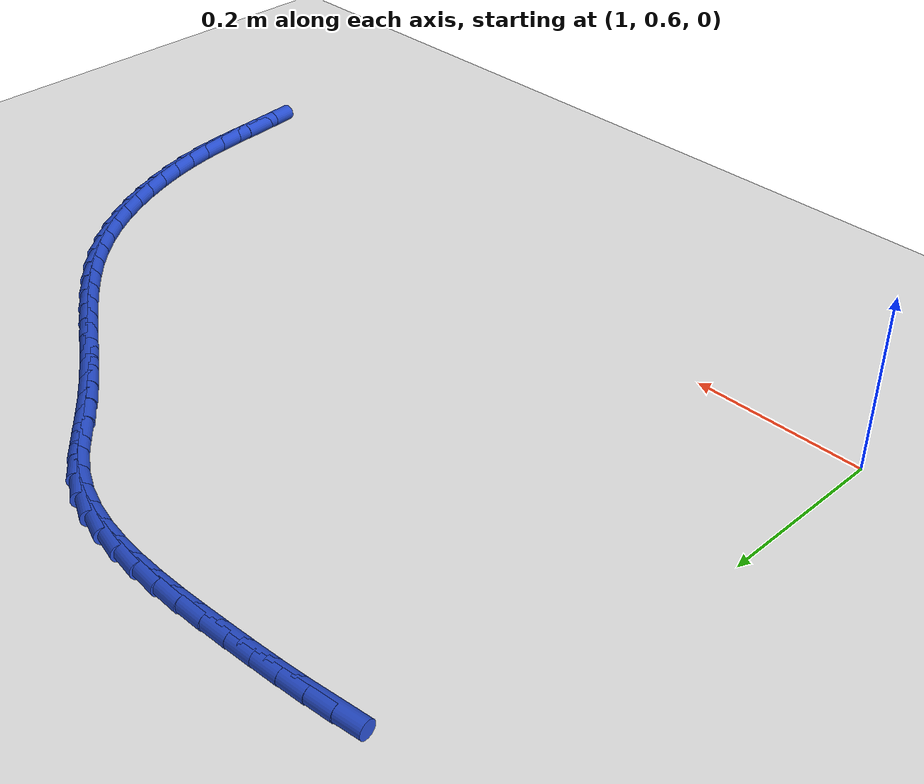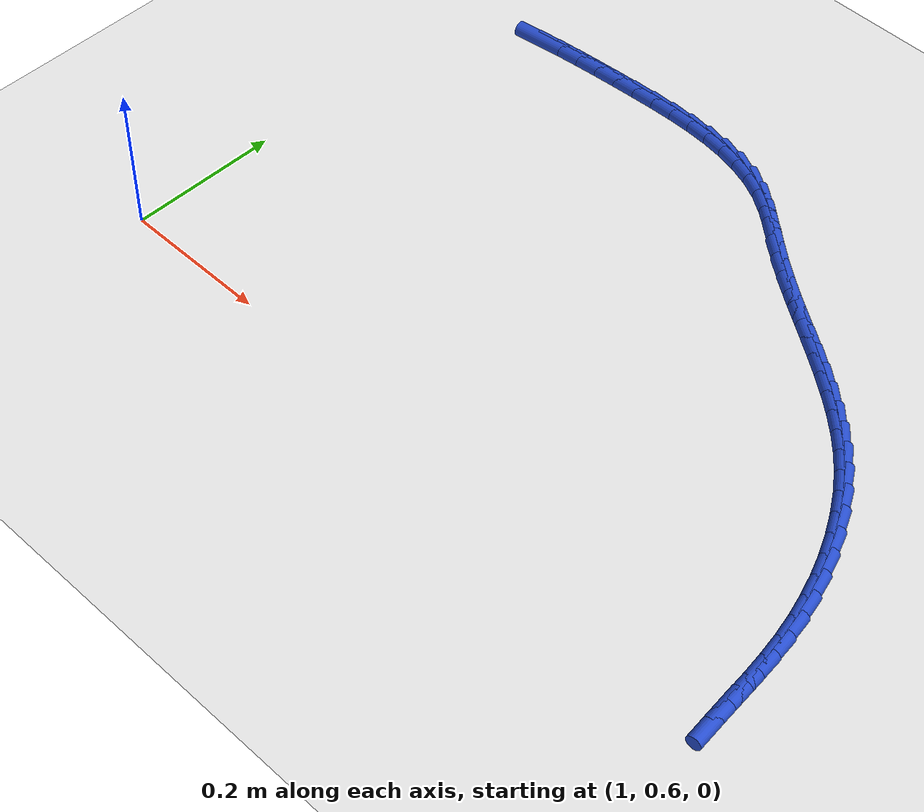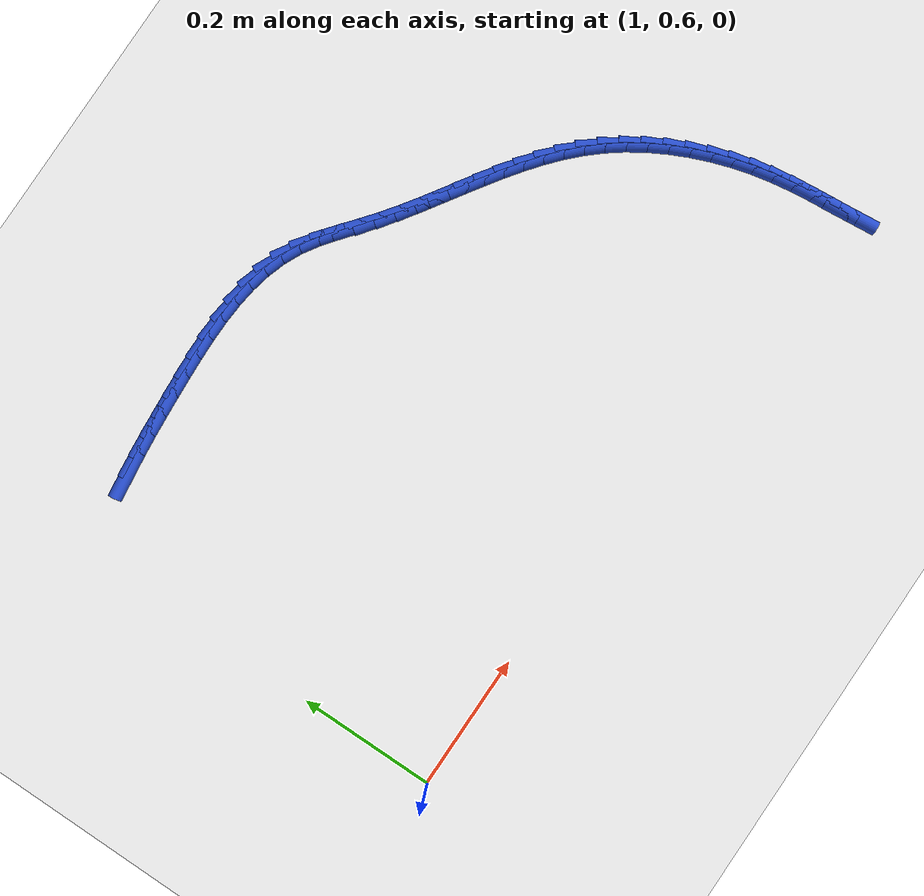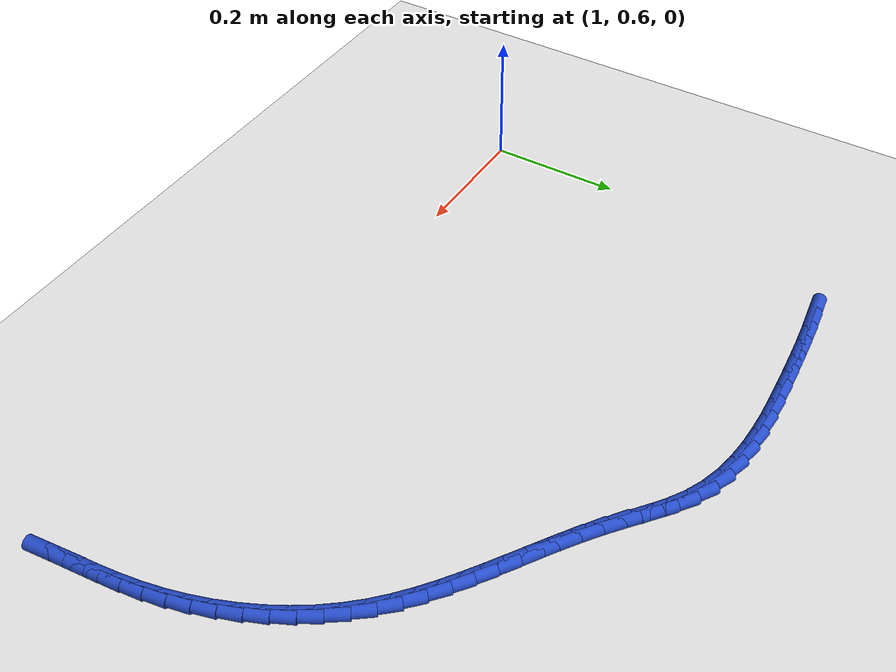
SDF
<sdf version="1.6">
 <world name="default">
  <model name="ground_plane">
   <static>1</static>
   <link name="link">
    <collision name="collision">
     <geometry><plane><normal>0 0 1</normal><size>100 100</size></plane></geometry>
     <surface><friction><ode><mu>100</mu><mu2>50</mu2></ode></friction></surface>
    </collision>
    <visual name="visual">
     <cast_shadows>0</cast_shadows>
     <geometry><plane><normal>0 0 1</normal><size>100 100</size></plane></geometry>
     <material>
      <script><uri>file://media/materials/scripts/gazebo.material</uri><name>Gazebo/WhiteGlow</name></script>
     </material>
    </visual>
   </link>
  </model>
  <model name="line">
   <link name="link_59">
    <pose>1.1221974374540755 1.1787878383687243 0.01 0 1.57 0.12699382622252442</pose>
    <collision name="collision">
     <geometry><cylinder><radius>0.01</radius><length>0.08</length></cylinder></geometry>
    </collision>
    <visual name="visual">
     <material>
      <script><name>Gazebo/Blue</name><uri>file://media/materials/scripts/gazebo.material</uri></script>
     </material>
     <geometry><cylinder><radius>0.01</radius><length>0.08</length></cylinder></geometry>
    </visual>
   </link>
   <link name="link_60">
    <pose>1.1520493601372221 1.1825993603346534 0.01 0 1.57 0.10156933419751353</pose>
    <collision name="collision">
     <geometry><cylinder><radius>0.01</radius><length>0.08</length></cylinder></geometry>
    </collision>
    <visual name="visual">
     <material>
      <script><name>Gazebo/Blue</name><uri>file://media/materials/scripts/gazebo.material</uri></script>
     </material>
     <geometry><cylinder><radius>0.01</radius><length>0.08</length></cylinder></geometry>
    </visual>
   </link>
   <link name="link_61">
    <pose>1.182346296739578 1.1856872258030386 0.01 0 1.57 0.08274207911694119</pose>
    <collision name="collision">
     <geometry><cylinder><radius>0.01</radius><length>0.08</length></cylinder></geometry>
    </collision>
    <visual name="visual">
     <material>
      <script><name>Gazebo/Blue</name><uri>file://media/materials/scripts/gazebo.material</uri></script>
     </material>
     <geometry><cylinder><radius>0.01</radius><length>0.08</length></cylinder></geometry>
    </visual>
   </link>
   <link name="link_62">
    <pose>1.2130212666921885 1.1882311446814733 0.01 0 1.57 0.07022836141062268</pose>
    <collision name="collision">
     <geometry><cylinder><radius>0.01</radius><length>0.08</length></cylinder></geometry>
    </collision>
    <visual name="visual">
     <material>
      <script><name>Gazebo/Blue</name><uri>file://media/materials/scripts/gazebo.material</uri></script>
     </material>
     <geometry><cylinder><radius>0.01</radius><length>0.08</length></cylinder></geometry>
    </visual>
   </link>
   <link name="link_63">
    <pose>1.2440072894260994 1.1904108268775508 0.01 0 1.57 0.06299139876935778</pose>
    <collision name="collision">
     <geometry><cylinder><radius>0.01</radius><length>0.08</length></cylinder></geometry>
    </collision>
    <visual name="visual">
     <material>
      <script><name>Gazebo/Blue</name><uri>file://media/materials/scripts/gazebo.material</uri></script>
     </material>
     <geometry><cylinder><radius>0.01</radius><length>0.08</length></cylinder></geometry>
    </visual>
   </link>
   <link name="link_64">
    <pose>1.275231124897852 1.1923802654940532 0.01 0 1.57 0.05062744018367149</pose>
    <collision name="collision">
     <geometry><cylinder><radius>0.01</radius><length>0.08</length></cylinder></geometry>
    </collision>
    <visual name="visual">
     <material>
      <script><name>Gazebo/Blue</name><uri>file://media/materials/scripts/gazebo.material</uri></script>
     </material>
     <geometry><cylinder><radius>0.01</radius><length>0.08</length></cylinder></geometry>
    </visual>
   </link>
   <link name="link_65">
    <pose>1.3065400034953691 1.1939667095289708 0.01 0 1.57 0.025835764297099696</pose>
    <collision name="collision">
     <geometry><cylinder><radius>0.01</radius><length>0.08</length></cylinder></geometry>
    </collision>
    <visual name="visual">
     <material>
      <script><name>Gazebo/Blue</name><uri>file://media/materials/scripts/gazebo.material</uri></script>
     </material>
     <geometry><cylinder><radius>0.01</radius><length>0.08</length></cylinder></geometry>
    </visual>
   </link>
   <link name="link_66">
    <pose>1.337726440785607 1.1947726142902884 0.01 0 1.57 -0.012204947464806616</pose>
    <collision name="collision">
     <geometry><cylinder><radius>0.01</radius><length>0.08</length></cylinder></geometry>
    </collision>
    <visual name="visual">
     <material>
      <script><name>Gazebo/Blue</name><uri>file://media/materials/scripts/gazebo.material</uri></script>
     </material>
     <geometry><cylinder><radius>0.01</radius><length>0.08</length></cylinder></geometry>
    </visual>
   </link>
   <link name="link_67">
    <pose>1.3685818744518432 1.1943960066432842 0.01 0 1.57 -0.06459866417769501</pose>
    <collision name="collision">
     <geometry><cylinder><radius>0.01</radius><length>0.08</length></cylinder></geometry>
    </collision>
    <visual name="visual">
     <material>
      <script><name>Gazebo/Blue</name><uri>file://media/materials/scripts/gazebo.material</uri></script>
     </material>
     <geometry><cylinder><radius>0.01</radius><length>0.08</length></cylinder></geometry>
    </visual>
   </link>
   <link name="link_68">
    <pose>1.3988977421773545 1.1924349134532353 0.01 0 1.57 -0.132723878665268</pose>
    <collision name="collision">
     <geometry><cylinder><radius>0.01</radius><length>0.08</length></cylinder></geometry>
    </collision>
    <visual name="visual">
     <material>
      <script><name>Gazebo/Blue</name><uri>file://media/materials/scripts/gazebo.material</uri></script>
     </material>
     <geometry><cylinder><radius>0.01</radius><length>0.08</length></cylinder></geometry>
    </visual>
   </link>
   <link name="link_69">
    <pose>1.428465481645419 1.18848736158542 0.01 0 1.57 -0.21793517233601017</pose>
    <collision name="collision">
     <geometry><cylinder><radius>0.01</radius><length>0.08</length></cylinder></geometry>
    </collision>
    <visual name="visual">
     <material>
      <script><name>Gazebo/Blue</name><uri>file://media/materials/scripts/gazebo.material</uri></script>
     </material>
     <geometry><cylinder><radius>0.01</radius><length>0.08</length></cylinder></geometry>
    </visual>
   </link>
   <link name="link_70">
    <pose>1.4570765305393123 1.1821513779051147 0.01 0 1.57 -0.32102206809185646</pose>
    <collision name="collision">
     <geometry><cylinder><radius>0.01</radius><length>0.08</length></cylinder></geometry>
    </collision>
    <visual name="visual">
     <material>
      <script><name>Gazebo/Blue</name><uri>file://media/materials/scripts/gazebo.material</uri></script>
     </material>
     <geometry><cylinder><radius>0.01</radius><length>0.08</length></cylinder></geometry>
    </visual>
   </link>
   <link name="link_71">
    <pose>1.4845223265423124 1.1730249892775981 0.01 0 1.57 -0.44139892792805374</pose>
    <collision name="collision">
     <geometry><cylinder><radius>0.01</radius><length>0.08</length></cylinder></geometry>
    </collision>
    <visual name="visual">
     <material>
      <script><name>Gazebo/Blue</name><uri>file://media/materials/scripts/gazebo.material</uri></script>
     </material>
     <geometry><cylinder><radius>0.01</radius><length>0.08</length></cylinder></geometry>
    </visual>
   </link>
   <link name="link_72">
    <pose>1.5105943073376953 1.160706222568147 0.01 0 1.57 -0.5657553439380983</pose>
    <collision name="collision">
     <geometry><cylinder><radius>0.01</radius><length>0.08</length></cylinder></geometry>
    </collision>
    <visual name="visual">
     <material>
      <script><name>Gazebo/Blue</name><uri>file://media/materials/scripts/gazebo.material</uri></script>
     </material>
     <geometry><cylinder><radius>0.01</radius><length>0.08</length></cylinder></geometry>
    </visual>
   </link>
   <link name="link_73">
    <pose>1.5352231057080645 1.145067028423507 0.01 0 1.57 -0.649163051151366</pose>
    <collision name="collision">
     <geometry><cylinder><radius>0.01</radius><length>0.08</length></cylinder></geometry>
    </collision>
    <visual name="visual">
     <material>
      <script><name>Gazebo/Blue</name><uri>file://media/materials/scripts/gazebo.material</uri></script>
     </material>
     <geometry><cylinder><radius>0.01</radius><length>0.08</length></cylinder></geometry>
    </visual>
   </link>
   <link name="link_74">
    <pose>1.558905991958142 1.127094450575827 0.01 0 1.57 -0.6833527396289902</pose>
    <collision name="collision">
     <geometry><cylinder><radius>0.01</radius><length>0.08</length></cylinder></geometry>
    </collision>
    <visual name="visual">
     <material>
      <script><name>Gazebo/Blue</name><uri>file://media/materials/scripts/gazebo.material</uri></script>
     </material>
     <geometry><cylinder><radius>0.01</radius><length>0.08</length></cylinder></geometry>
    </visual>
   </link>
   <link name="link_75">
    <pose>1.58228440352493 1.1080592410647276 0.01 0 1.57 -0.6712929177075629</pose>
    <collision name="collision">
     <geometry><cylinder><radius>0.01</radius><length>0.08</length></cylinder></geometry>
    </collision>
    <visual name="visual">
     <material>
      <script><name>Gazebo/Blue</name><uri>file://media/materials/scripts/gazebo.material</uri></script>
     </material>
     <geometry><cylinder><radius>0.01</radius><length>0.08</length></cylinder></geometry>
    </visual>
   </link>
   <link name="link_76">
    <pose>1.605995318118645 1.089224220624254 0.01 0 1.57 -0.633973117105814</pose>
    <collision name="collision">
     <geometry><cylinder><radius>0.01</radius><length>0.08</length></cylinder></geometry>
    </collision>
    <visual name="visual">
     <material>
      <script><name>Gazebo/Blue</name><uri>file://media/materials/scripts/gazebo.material</uri></script>
     </material>
     <geometry><cylinder><radius>0.01</radius><length>0.08</length></cylinder></geometry>
    </visual>
   </link>
   <link name="link_77">
    <pose>1.6303680120488673 1.071304984652881 0.01 0 1.57 -0.6046618642572128</pose>
    <collision name="collision">
     <geometry><cylinder><radius>0.01</radius><length>0.08</length></cylinder></geometry>
    </collision>
    <visual name="visual">
     <material>
      <script><name>Gazebo/Blue</name><uri>file://media/materials/scripts/gazebo.material</uri></script>
     </material>
     <geometry><cylinder><radius>0.01</radius><length>0.08</length></cylinder></geometry>
    </visual>
   </link>
   <link name="link_78">
    <pose>1.6552302050139303 1.0541251453331166 0.01 0 1.57 -0.5864422495113113</pose>
    <collision name="collision">
     <geometry><cylinder><radius>0.01</radius><length>0.08</length></cylinder></geometry>
    </collision>
    <visual name="visual">
     <material>
      <script><name>Gazebo/Blue</name><uri>file://media/materials/scripts/gazebo.material</uri></script>
     </material>
     <geometry><cylinder><radius>0.01</radius><length>0.08</length></cylinder></geometry>
    </visual>
   </link>
   <link name="link_79">
    <pose>1.6803634605193594 1.0374262292994503 0.01 0 1.57 -0.5793182789395411</pose>
    <collision name="collision">
     <geometry><cylinder><radius>0.01</radius><length>0.08</length></cylinder></geometry>
    </collision>
    <visual name="visual">
     <material>
      <script><name>Gazebo/Blue</name><uri>file://media/materials/scripts/gazebo.material</uri></script>
     </material>
     <geometry><cylinder><radius>0.01</radius><length>0.08</length></cylinder></geometry>
    </visual>
   </link>
   <link name="link_80">
    <pose>1.7055493420706824 1.0209497631863726 0.01 0 1.57 -0.5833519210986355</pose>
    <collision name="collision">
     <geometry><cylinder><radius>0.01</radius><length>0.08</length></cylinder></geometry>
    </collision>
    <visual name="visual">
     <material>
      <script><name>Gazebo/Blue</name><uri>file://media/materials/scripts/gazebo.material</uri></script>
     </material>
     <geometry><cylinder><radius>0.01</radius><length>0.08</length></cylinder></geometry>
    </visual>
   </link>
   <link name="link_81">
    <pose>1.7305694131734253 1.0044372736283724 0.01 0 1.57 -0.5986913272170409</pose>
    <collision name="collision">
     <geometry><cylinder><radius>0.01</radius><length>0.08</length></cylinder></geometry>
    </collision>
    <visual name="visual">
     <material>
      <script><name>Gazebo/Blue</name><uri>file://media/materials/scripts/gazebo.material</uri></script>
     </material>
     <geometry><cylinder><radius>0.01</radius><length>0.08</length></cylinder></geometry>
    </visual>
   </link>
   <link name="link_82">
    <pose>1.7552052373331144 0.9876302872599396 0.01 0 1.57 -0.6255585480275918</pose>
    <collision name="collision">
     <geometry><cylinder><radius>0.01</radius><length>0.08</length></cylinder></geometry>
    </collision>
    <visual name="visual">
     <material>
      <script><name>Gazebo/Blue</name><uri>file://media/materials/scripts/gazebo.material</uri></script>
     </material>
     <geometry><cylinder><radius>0.01</radius><length>0.08</length></cylinder></geometry>
    </visual>
   </link>
   <link name="link_83">
    <pose>1.7792383780552772 0.9702703307155647 0.01 0 1.57 -0.6641923107368658</pose>
    <collision name="collision">
     <geometry><cylinder><radius>0.01</radius><length>0.08</length></cylinder></geometry>
    </collision>
    <visual name="visual">
     <material>
      <script><name>Gazebo/Blue</name><uri>file://media/materials/scripts/gazebo.material</uri></script>
     </material>
     <geometry><cylinder><radius>0.01</radius><length>0.08</length></cylinder></geometry>
    </visual>
   </link>
   <link name="link_84">
    <pose>1.802450398845439 0.9520989306297366 0.01 0 1.57 -0.7147388923626082</pose>
    <collision name="collision">
     <geometry><cylinder><radius>0.01</radius><length>0.08</length></cylinder></geometry>
    </collision>
    <visual name="visual">
     <material>
      <script><name>Gazebo/Blue</name><uri>file://media/materials/scripts/gazebo.material</uri></script>
     </material>
     <geometry><cylinder><radius>0.01</radius><length>0.08</length></cylinder></geometry>
    </visual>
   </link>
   <link name="link_85">
    <pose>1.8246228632091277 0.9328576136369453 0.01 0 1.57 -0.777087615831865</pose>
    <collision name="collision">
     <geometry><cylinder><radius>0.01</radius><length>0.08</length></cylinder></geometry>
    </collision>
    <visual name="visual">
     <material>
      <script><name>Gazebo/Blue</name><uri>file://media/materials/scripts/gazebo.material</uri></script>
     </material>
     <geometry><cylinder><radius>0.01</radius><length>0.08</length></cylinder></geometry>
    </visual>
   </link>
   <link name="link_86">
    <pose>1.8455373346518695 0.9122879063716811 0.01 0 1.57 -0.8500505865526808</pose>
    <collision name="collision">
     <geometry><cylinder><radius>0.01</radius><length>0.08</length></cylinder></geometry>
    </collision>
    <visual name="visual">
     <material>
      <script><name>Gazebo/Blue</name><uri>file://media/materials/scripts/gazebo.material</uri></script>
     </material>
     <geometry><cylinder><radius>0.01</radius><length>0.08</length></cylinder></geometry>
    </visual>
   </link>
   <link name="link_87">
    <pose>1.8649835134855937 0.8901494263133186 0.01 0 1.57 -0.9246068376021098</pose>
    <collision name="collision">
     <geometry><cylinder><radius>0.01</radius><length>0.08</length></cylinder></geometry>
    </collision>
    <visual name="visual">
     <material>
      <script><name>Gazebo/Blue</name><uri>file://media/materials/scripts/gazebo.material</uri></script>
     </material>
     <geometry><cylinder><radius>0.01</radius><length>0.08</length></cylinder></geometry>
    </visual>
   </link>
   <link name="link_88">
    <pose>1.8828609069785371 0.8664459285691141 0.01 0 1.57 -0.9950174953947333</pose>
    <collision name="collision">
     <geometry><cylinder><radius>0.01</radius><length>0.08</length></cylinder></geometry>
    </collision>
    <visual name="visual">
     <material>
      <script><name>Gazebo/Blue</name><uri>file://media/materials/scripts/gazebo.material</uri></script>
     </material>
     <geometry><cylinder><radius>0.01</radius><length>0.08</length></cylinder></geometry>
    </visual>
   </link>
   <link name="link_89">
    <pose>1.899147831712147 0.841356387735412 0.01 0 1.57 -1.061683226617974</pose>
    <collision name="collision">
     <geometry><cylinder><radius>0.01</radius><length>0.08</length></cylinder></geometry>
    </collision>
    <visual name="visual">
     <material>
      <script><name>Gazebo/Blue</name><uri>file://media/materials/scripts/gazebo.material</uri></script>
     </material>
     <geometry><cylinder><radius>0.01</radius><length>0.08</length></cylinder></geometry>
    </visual>
   </link>
   <link name="link_90">
    <pose>1.9138243269385748 0.8150636084822941 0.01 0 1.57 -1.1251895767879638</pose>
    <collision name="collision">
     <geometry><cylinder><radius>0.01</radius><length>0.08</length></cylinder></geometry>
    </collision>
    <visual name="visual">
     <material>
      <script><name>Gazebo/Blue</name><uri>file://media/materials/scripts/gazebo.material</uri></script>
     </material>
     <geometry><cylinder><radius>0.01</radius><length>0.08</length></cylinder></geometry>
    </visual>
   </link>
   <link name="link_91">
    <pose>1.9268704319099739 0.7877503954798423 0.01 0 1.57 -1.1861499341707493</pose>
    <collision name="collision">
     <geometry><cylinder><radius>0.01</radius><length>0.08</length></cylinder></geometry>
    </collision>
    <visual name="visual">
     <material>
      <script><name>Gazebo/Blue</name><uri>file://media/materials/scripts/gazebo.material</uri></script>
     </material>
     <geometry><cylinder><radius>0.01</radius><length>0.08</length></cylinder></geometry>
    </visual>
   </link>
   <link name="link_92">
    <pose>1.9382661858784949 0.7595995533981376 0.01 0 1.57 -1.245190468543144</pose>
    <collision name="collision">
     <geometry><cylinder><radius>0.01</radius><length>0.08</length></cylinder></geometry>
    </collision>
    <visual name="visual">
     <material>
      <script><name>Gazebo/Blue</name><uri>file://media/materials/scripts/gazebo.material</uri></script>
     </material>
     <geometry><cylinder><radius>0.01</radius><length>0.08</length></cylinder></geometry>
    </visual>
   </link>
   <link name="link_93">
    <pose>1.9479916280962903 0.7307938869072612 0.01 0 1.57 -1.3029444172997642</pose>
    <collision name="collision">
     <geometry><cylinder><radius>0.01</radius><length>0.08</length></cylinder></geometry>
    </collision>
    <visual name="visual">
     <material>
      <script><name>Gazebo/Blue</name><uri>file://media/materials/scripts/gazebo.material</uri></script>
     </material>
     <geometry><cylinder><radius>0.01</radius><length>0.08</length></cylinder></geometry>
    </visual>
   </link>
   <link name="link_94">
    <pose>1.9560267978155121 0.7015162006772956 0.01 0 1.57 -1.3600526529412829</pose>
    <collision name="collision">
     <geometry><cylinder><radius>0.01</radius><length>0.08</length></cylinder></geometry>
    </collision>
    <visual name="visual">
     <material>
      <script><name>Gazebo/Blue</name><uri>file://media/materials/scripts/gazebo.material</uri></script>
     </material>
     <geometry><cylinder><radius>0.01</radius><length>0.08</length></cylinder></geometry>
    </visual>
   </link>
   <link name="link_95">
    <pose>1.9623517509806503 0.6719492953800116 0.01 0 1.57 -1.4138890516357348</pose>
    <collision name="collision">
     <geometry><cylinder><radius>0.01</radius><length>0.08</length></cylinder></geometry>
    </collision>
    <visual name="visual">
     <material>
      <script><name>Gazebo/Blue</name><uri>file://media/materials/scripts/gazebo.material</uri></script>
     </material>
     <geometry><cylinder><radius>0.01</radius><length>0.08</length></cylinder></geometry>
    </visual>
   </link>
   <link name="link_96">
    <pose>1.9670502304325217 0.6422511355981756 0.01 0 1.57 -1.4535426384321801</pose>
    <collision name="collision">
     <geometry><cylinder><radius>0.01</radius><length>0.08</length></cylinder></geometry>
    </collision>
    <visual name="visual">
     <material>
      <script><name>Gazebo/Blue</name><uri>file://media/materials/scripts/gazebo.material</uri></script>
     </material>
     <geometry><cylinder><radius>0.01</radius><length>0.08</length></cylinder></geometry>
    </visual>
   </link>
   <link name="link_97">
    <pose>1.9705552029199556 0.612496036423937 0.01 0 1.57 -1.4763762709311823</pose>
    <collision name="collision">
     <geometry><cylinder><radius>0.01</radius><length>0.08</length></cylinder></geometry>
    </collision>
    <visual name="visual">
     <material>
      <script><name>Gazebo/Blue</name><uri>file://media/materials/scripts/gazebo.material</uri></script>
     </material>
     <geometry><cylinder><radius>0.01</radius><length>0.08</length></cylinder></geometry>
    </visual>
   </link>
   <link name="link_98">
    <pose>1.9733730804103915 0.5827407206397988 0.01 0 1.57 -1.4822306365668438</pose>
    <collision name="collision">
     <geometry><cylinder><radius>0.01</radius><length>0.08</length></cylinder></geometry>
    </collision>
    <visual name="visual">
     <material>
      <script><name>Gazebo/Blue</name><uri>file://media/materials/scripts/gazebo.material</uri></script>
     </material>
     <geometry><cylinder><radius>0.01</radius><length>0.08</length></cylinder></geometry>
    </visual>
   </link>
   <link name="link_99">
    <pose>1.9760102748712702 0.5530419110282642 0.01 0 1.57 -1.4709815879762216</pose>
    <collision name="collision">
     <geometry><cylinder><radius>0.01</radius><length>0.08</length></cylinder></geometry>
    </collision>
    <visual name="visual">
     <material>
      <script><name>Gazebo/Blue</name><uri>file://media/materials/scripts/gazebo.material</uri></script>
     </material>
     <geometry><cylinder><radius>0.01</radius><length>0.08</length></cylinder></geometry>
    </visual>
   </link>
  </model>
 </world>
</sdf>
